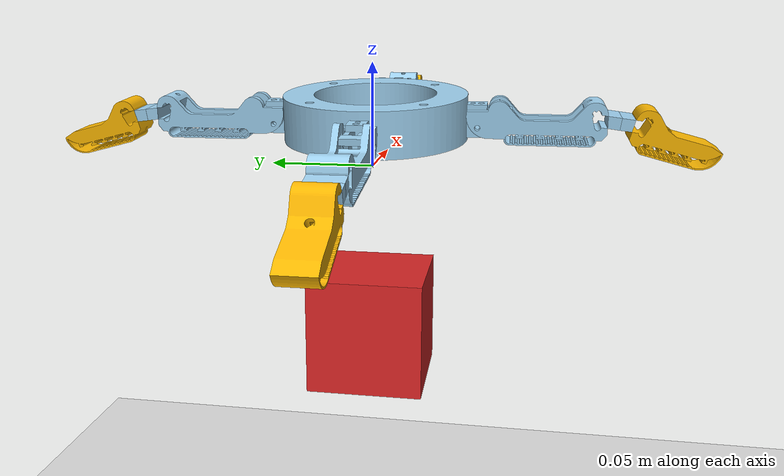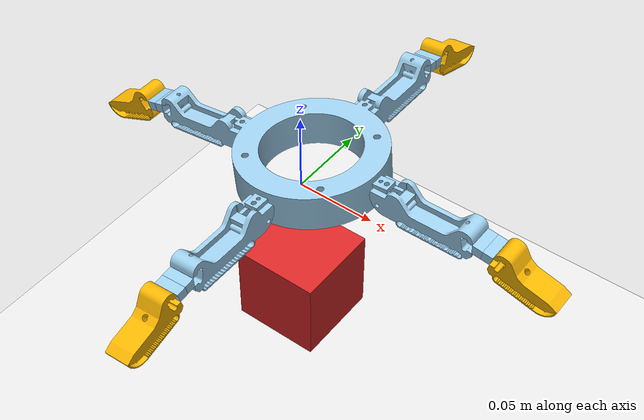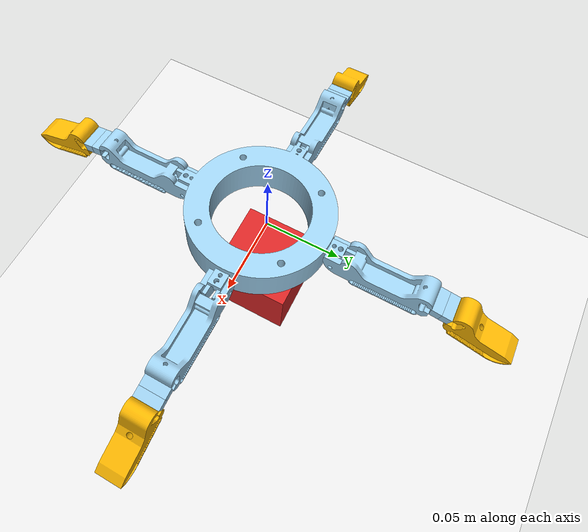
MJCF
<mujoco model="robot_box_scene">
    <include file="robot.xml"/>
    <include file="reorientation_cube.xml"/>

    <statistic center="0 0 0.03" extent="0.4" meansize="0.01"/>

    <visual>
        <headlight diffuse=".8 .8 .8" ambient=".2 .2 .2" specular="1 1 1"/>
        <global azimuth="120" elevation="-20"/>
    </visual>

    <asset>
        <texture type="skybox" builtin="gradient" rgb1="1 1 1" rgb2="1 1 1" width="800" height="800"/>
        <texture type="2d" name="groundplane" builtin="checker" mark="edge" rgb1="1 1 1" rgb2="1 1 1" markrgb="0 0 0"
          width="300" height="300"/>
        <material name="groundplane" texture="groundplane" texuniform="true" texrepeat="5 5" reflectance="0"/>
    </asset>

    <worldbody>
        <site name="world" pos="0 0 0" size="0.001"/>
        <camera name="side" pos="0.4 -0.4 0.2" xyaxes="0.7 0.7 0 -0.2 0.2 0.95"/>
        <camera name="top" pos="0 0 0.35" xyaxes="1 0 0 0 1 0"/>
        <geom name="ground" type="plane" friction="1.5 0.005 0.001" size="5.5 5.5 0.1" rgba=".9 .9 .9 1.0" material="groundplane" pos="0 0 -0.3"/>
    </worldbody>

    <option gravity="0 0 -9.81"/>

    <sensor>
        <framepos name="cube_position" objtype="site" objname="cube_center" reftype="site" refname="world"/>
        <framequat name="cube_orientation" objtype="xbody" objname="cube" reftype="site" refname="world"/>
        <framelinvel name="cube_linvel" objtype="xbody" objname="cube" reftype="site" refname="world"/>
        <frameangvel name="cube_angvel" objtype="xbody" objname="cube" reftype="site" refname="world"/>
        <gyro name="cube_self_rotation" site="cube_center"/>

        <framepos name="tip1_position" objtype="site" objname="tip" reftype="site" refname="world"/>
        <framepos name="tip2_position" objtype="site" objname="tip_2" reftype="site" refname="world"/>
        <framepos name="tip3_position" objtype="site" objname="tip_3" reftype="site" refname="world"/>
        <framepos name="tip4_position" objtype="site" objname="tip_4" reftype="site" refname="world"/>
    </sensor>

    <keyframe>
        <key name="home"
          qpos="
            0.1 0.05 0.05 0.05
            0.1 0.05 0.05 0.05
            0.1 0.05 0.05 0.05
            0.1 0.05 0.05 0.05
            0 0
          "
          ctrl="0.3 0.3 0.3 0.3"
        />
    </keyframe>
</mujoco>

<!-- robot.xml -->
<!-- Generated using onshape-to-robot -->
<!-- Onshape https://cad.onshape.com/documents/8e3b798062dc68d62ddd1283/w/f24c7ae362d29fd08e04f814/e/846a14a309426dccc22e67ba -->
<mujoco model="C:\Users\jeonj\Desktop\rl\left-rl-with-mujoco\my-robot">
  <compiler angle="radian" meshdir="assets" autolimits="true"/>
  <default>
    <default class="C:\Users\jeonj\Desktop\rl\left-rl-with-mujoco\my-robot">
      <joint frictionloss="0.1" armature="0.005"/>
      <position kp="50" dampratio="1"/>
      <default class="visual">
        <geom type="mesh" contype="0" conaffinity="0" group="2"/>
      </default>
      <default class="collision">
        <geom group="3"/>
      </default>
    </default>
  </default>
  <!-- Additional tendons.xml -->
  <tendon>
    <fixed name="right_finger_tendon">
      <joint joint="right-body-link1" coef="1.0"/>
      <joint joint="right-link1-joint" coef="1.0"/>
      <joint joint="right-joint-joint" coef="1.0"/>
      <joint joint="right-joint-link2" coef="1.0"/>
    </fixed>
    <fixed name="front_finger_tendon">
      <joint joint="front-body-link1" coef="1.0"/>
      <joint joint="front-link1-joint" coef="1.0"/>
      <joint joint="front-joint-joint" coef="1.0"/>
      <joint joint="front-joint-link2" coef="1.0"/>
    </fixed>
    <fixed name="left_finger_tendon">
      <joint joint="left-body-link1" coef="1.0"/>
      <joint joint="left-link1-joint" coef="1.0"/>
      <joint joint="left-joint-joint" coef="1.0"/>
      <joint joint="left-joint-link2" coef="1.0"/>
    </fixed>
    <fixed name="back_finger_tendon">
      <joint joint="back-body-link1" coef="1.0"/>
      <joint joint="back-link1-joint" coef="1.0"/>
      <joint joint="back-joint-joint" coef="1.0"/>
      <joint joint="back-joint-link2" coef="1.0"/>
    </fixed>
  </tendon>
  <actuator>
    <motor name="right_finger_motor" tendon="right_finger_tendon" gear="1" ctrlrange="-1 1"/>
    <motor name="front_finger_motor" tendon="front_finger_tendon" gear="1" ctrlrange="-1 1"/>
    <motor name="left_finger_motor" tendon="left_finger_tendon" gear="1" ctrlrange="-1 1"/>
    <motor name="back_finger_motor" tendon="back_finger_tendon" gear="1" ctrlrange="-1 1"/>
  </actuator>
    <contact>
    <exclude body1="1_moter_based" body2="part_1"/>
    <exclude body1="part_1" body2="part_1_2"/>
    <exclude body1="part_1_2" body2="part_1_3"/>
    <exclude body1="part_1_3" body2="part_1_4"/>
    <exclude body1="1_moter_based" body2="part_1_5"/>
    <exclude body1="part_1_5" body2="part_1_6"/>
    <exclude body1="part_1_6" body2="part_1_7"/>
    <exclude body1="part_1_7" body2="part_1_8"/>
    <exclude body1="1_moter_based" body2="part_1_9"/>
    <exclude body1="part_1_9" body2="part_1_10"/>
    <exclude body1="part_1_10" body2="part_1_11"/>
    <exclude body1="part_1_11" body2="part_1_12"/>
    <exclude body1="1_moter_based" body2="part_1_13"/>
    <exclude body1="part_1_13" body2="part_1_14"/>
    <exclude body1="part_1_14" body2="part_1_15"/>
    <exclude body1="part_1_15" body2="part_1_16"/>
  </contact>
<worldbody>
    <!-- Link 1_moter_based -->
    <body name="1_moter_based" pos="0 0 0" quat="1 0 0 0" childclass="C:\Users\jeonj\Desktop\rl\left-rl-with-mujoco\my-robot">
      <inertial pos="0.00865248 -0.000211101 0.0236533" mass="0.0988574" fullinertia="7.99671e-05 7.93898e-05 0.000150461 -1.4e-11 -6.3688e-06 1.55e-10"/>
      <!-- Part 1_moter_based -->
      <geom type="mesh" class="visual" pos="0.0076775 -0.000211712 0.0345291" quat="0.0446761 -0 0.999002 0" mesh="1_moter_based" material="1_moter_based_material"/>
      <geom type="box" class="collision" pos="0.00865939 -0.000211712 0.023573" quat="0.0446761 -0 0.999002 0" size="0.0602996 0.0602996 0.011"/>
      <!-- Link part_1 -->
      <body name="part_1" pos="0.0587722 -0.000211712 0.0245501" quat="0.707106 -0.707106 -0.00074791 -0.00074791">
        <!-- Joint from 1_moter_based to part_1 -->
        <joint axis="0 0 1" name="right-body-link1" type="hinge" range="-0.08726646259971707 1.4835298641951795"/>
        <inertial pos="0.0303144 -0.00114407 -2.76e-10" mass="0.00967703" fullinertia="5.09882e-07 3.73089e-06 3.70397e-06 2.49e-09 -0 0"/>
        <!-- Part part_1 -->
        <geom type="mesh" class="visual" pos="-0.00605674 0.0178057 -0.008" quat="0.707107 -0 0 -0.707107" mesh="part_1" material="part_1_material"/>
        <geom type="box" class="collision" pos="0.0273631 -0.00252505 0" quat="0.707107 -0 0 -0.707107" size="0.010475 0.0326633 0.008"/>
        <!-- Link part_1_2 -->
        <body name="part_1_2" pos="0.0600264 -0.00109104 0" quat="1 0 -0 0">
          <!-- Joint from part_1 to part_1_2 -->
          <joint axis="0 0 1" name="right-link1-joint" type="hinge" range="0.0 0.17453292519943295"/>
          <inertial pos="0 0 0" mass="1e-09" fullinertia="1e-09 1e-09 1e-09 0 0 0"/>
          <!-- Part part_1_2 -->
          <geom type="mesh" class="visual" pos="-0.066152 0.0188877 -0.008" quat="0.707107 -0 -0 -0.707107" mesh="part_1__2" material="part_1__2_material"/>
          <geom type="box" class="collision" pos="0.00312812 -0.00254674 0" quat="0.707107 -0 -0 -0.707107" size="0.00327122 0.00312809 0.008"/>
          <!-- Link part_1_3 -->
          <body name="part_1_3" pos="0.00550329 0.000724522 0" quat="1 0 0 -0">
            <!-- Joint from part_1_2 to part_1_3 -->
            <joint axis="0 0 1" name="right-joint-joint" type="hinge" range="0.0 0.17453292519943295"/>
            <inertial pos="0 0 0" mass="1e-09" fullinertia="1e-09 1e-09 1e-09 0 0 0"/>
            <!-- Part part_1_3 -->
            <geom type="mesh" class="visual" pos="-0.0716553 0.0181632 -0.008" quat="0.707107 0 0 -0.707107" mesh="part_1__3" material="part_1__3_material"/>
            <geom type="box" class="collision" pos="0.00348026 -0.00249631 0" quat="0.707107 0 0 -0.707107" size="0.00322251 0.00348024 0.008"/>
            <!-- Link part_1_4 -->
            <body name="part_1_4" pos="0.00551629 0.000726234 0" quat="1 0 0 -0">
              <!-- Joint from part_1_3 to part_1_4 -->
              <joint axis="0 0 1" name="right-joint-link2" type="hinge" range="0.0 0.17453292519943295"/>
              <inertial pos="0.0177914 0.00463425 -2.4933e-08" mass="0.00789483" fullinertia="4.5574e-07 1.04275e-06 1.16314e-06 -3.06836e-07 2e-12 1e-12"/>
              <!-- Part part_1_4 -->
              <geom type="mesh" class="visual" pos="-0.0771851 0.0174352 -0.008" quat="0.707107 -0 0 -0.707107" mesh="part_1__4" material="part_1__4_material"/>
              <geom type="box" class="collision" pos="0.0200098 0.00346335 0" quat="0.707107 -0 0 -0.707107" size="0.0137562 0.0209902 0.008"/>
                          <site name="tip" type="sphere" size="0.004" pos="0.0408 0.0034 0" rgba="1 0 0 0.5" group="4"/>
            </body>
          </body>
        </body>
      </body>
      <!-- Link part_1_5 -->
      <body name="part_1_5" pos="0.00897181 -0.0502117 0.020087" quat="0.521839 -0.477163 0.477163 -0.521839">
        <!-- Joint from 1_moter_based to part_1_5 -->
        <joint axis="0 0 1" name="front-body-link1" type="hinge" range="-8.881784197001252e-16 1.5707963267948957"/>
        <inertial pos="0.0303144 -0.00114407 -2.76e-10" mass="0.00967703" fullinertia="5.09882e-07 3.73089e-06 3.70397e-06 2.49e-09 -0 0"/>
        <!-- Part part_1_5 -->
        <geom type="mesh" class="visual" pos="-0.00605674 0.0178057 -0.008" quat="0.707107 0 0 -0.707107" mesh="part_1" material="part_1_material"/>
        <geom type="box" class="collision" pos="0.0273631 -0.00252505 0" quat="0.707107 0 0 -0.707107" size="0.010475 0.0326633 0.008"/>
        <!-- Link part_1_6 -->
        <body name="part_1_6" pos="0.0600264 -0.00109104 0" quat="1 0 0 -0">
          <!-- Joint from part_1_5 to part_1_6 -->
          <joint axis="0 0 1" name="front-link1-joint" type="hinge" range="0.0 0.17453292519943295"/>
          <inertial pos="0 0 0" mass="1e-09" fullinertia="1e-09 1e-09 1e-09 0 0 0"/>
          <!-- Part part_1_6 -->
          <geom type="mesh" class="visual" pos="-0.066152 0.0188877 -0.008" quat="0.707107 0 0 -0.707107" mesh="part_1__2" material="part_1__2_material"/>
          <geom type="box" class="collision" pos="0.00312812 -0.00254674 0" quat="0.707107 0 0 -0.707107" size="0.00327122 0.00312809 0.008"/>
          <!-- Link part_1_7 -->
          <body name="part_1_7" pos="0.00550329 0.000724522 -0" quat="1 0 0 -0">
            <!-- Joint from part_1_6 to part_1_7 -->
            <joint axis="0 0 1" name="front-joint-joint" type="hinge" range="0.0 0.17453292519943295"/>
            <inertial pos="0 0 0" mass="1e-09" fullinertia="1e-09 1e-09 1e-09 0 0 0"/>
            <!-- Part part_1_7 -->
            <geom type="mesh" class="visual" pos="-0.0716553 0.0181632 -0.008" quat="0.707107 0 0 -0.707107" mesh="part_1__3" material="part_1__3_material"/>
            <geom type="box" class="collision" pos="0.00348026 -0.00249631 0" quat="0.707107 0 0 -0.707107" size="0.00322251 0.00348024 0.008"/>
            <!-- Link part_1_8 -->
            <body name="part_1_8" pos="0.00551629 0.000726234 -0" quat="1 0 -0 0">
              <!-- Joint from part_1_7 to part_1_8 -->
              <joint axis="0 0 1" name="front-joint-link2" type="hinge" range="0.0 0.17453292519943295"/>
              <inertial pos="0.0177914 0.00463425 -2.4933e-08" mass="0.00789483" fullinertia="4.5574e-07 1.04275e-06 1.16314e-06 -3.06836e-07 2e-12 1e-12"/>
              <!-- Part part_1_8 -->
              <geom type="mesh" class="visual" pos="-0.0771851 0.0174352 -0.008" quat="0.707107 0 0 -0.707107" mesh="part_1__4" material="part_1__4_material"/>
              <geom type="box" class="collision" pos="0.0200098 0.00346335 0" quat="0.707107 0 0 -0.707107" size="0.0137562 0.0209902 0.008"/>
                          <site name="tip_2" type="sphere" size="0.004" pos="0.0408 0.0034 0" rgba="1 0 0 0.5" group="4"/>
            </body>
          </body>
        </body>
      </body>
      <!-- Link part_1_9 -->
      <body name="part_1_9" pos="-0.0408286 -0.000211712 0.0156238" quat="0.047167 0.047167 0.705532 -0.705532">
        <!-- Joint from 1_moter_based to part_1_9 -->
        <joint axis="0 0 1" name="left-body-link1" type="hinge" range="-0.04412582000000008 1.5266705067948965"/>
        <inertial pos="0.0303144 -0.00114407 -2.76e-10" mass="0.00967703" fullinertia="5.09882e-07 3.73089e-06 3.70397e-06 2.49e-09 -0 0"/>
        <!-- Part part_1_9 -->
        <geom type="mesh" class="visual" pos="-0.00605674 0.0178057 -0.008" quat="0.707107 0 0 -0.707107" mesh="part_1" material="part_1_material"/>
        <geom type="box" class="collision" pos="0.0273631 -0.00252505 0" quat="0.707107 0 0 -0.707107" size="0.010475 0.0326633 0.008"/>
        <!-- Link part_1_10 -->
        <body name="part_1_10" pos="0.0600264 -0.00109104 0" quat="1 0 -0 0">
          <!-- Joint from part_1_9 to part_1_10 -->
          <joint axis="0 0 1" name="left-link1-joint" type="hinge" range="0.0 0.17453292519943295"/>
          <inertial pos="0 0 0" mass="1e-09" fullinertia="1e-09 1e-09 1e-09 0 0 0"/>
          <!-- Part part_1_10 -->
          <geom type="mesh" class="visual" pos="-0.066152 0.0188877 -0.008" quat="0.707107 0 0 -0.707107" mesh="part_1__2" material="part_1__2_material"/>
          <geom type="box" class="collision" pos="0.00312812 -0.00254674 0" quat="0.707107 0 0 -0.707107" size="0.00327122 0.00312809 0.008"/>
          <!-- Link part_1_11 -->
          <body name="part_1_11" pos="0.00550329 0.000724522 0" quat="1 0 0 0">
            <!-- Joint from part_1_10 to part_1_11 -->
            <joint axis="0 0 1" name="left-joint-joint" type="hinge" range="0.0 0.17453292519943295"/>
            <inertial pos="0 0 0" mass="1e-09" fullinertia="1e-09 1e-09 1e-09 0 0 0"/>
            <!-- Part part_1_11 -->
            <geom type="mesh" class="visual" pos="-0.0716553 0.0181632 -0.008" quat="0.707107 0 -0 -0.707107" mesh="part_1__3" material="part_1__3_material"/>
            <geom type="box" class="collision" pos="0.00348026 -0.00249631 0" quat="0.707107 0 -0 -0.707107" size="0.00322251 0.00348024 0.008"/>
            <!-- Link part_1_12 -->
            <body name="part_1_12" pos="0.00551629 0.000726234 -0" quat="1 -0 0 0">
              <!-- Joint from part_1_11 to part_1_12 -->
              <joint axis="0 0 1" name="left-joint-link2" type="hinge" range="0.0 0.17453292519943295"/>
              <inertial pos="0.0177914 0.00463425 -2.4933e-08" mass="0.00789483" fullinertia="4.5574e-07 1.04275e-06 1.16314e-06 -3.06836e-07 2e-12 1e-12"/>
              <!-- Part part_1_12 -->
              <geom type="mesh" class="visual" pos="-0.0771851 0.0174352 -0.008" quat="0.707107 0 0 -0.707107" mesh="part_1__4" material="part_1__4_material"/>
              <geom type="box" class="collision" pos="0.0200098 0.00346335 0" quat="0.707107 0 0 -0.707107" size="0.0137562 0.0209902 0.008"/>
                          <site name="tip_3" type="sphere" size="0.004" pos="0.0408 0.0034 0" rgba="1 0 0 0.5" group="4"/>
            </body>
          </body>
        </body>
      </body>
      <!-- Link part_1_13 -->
      <body name="part_1_13" pos="0.00897181 0.0497883 0.020087" quat="0.477163 -0.521839 -0.521839 0.477163">
        <!-- Joint from 1_moter_based to part_1_13 -->
        <joint axis="0 0 1" name="back-body-link1" type="hinge" range="0.0 1.5707963267948966"/>
        <inertial pos="0.0303144 -0.00114407 -2.76e-10" mass="0.00967703" fullinertia="5.09882e-07 3.73089e-06 3.70397e-06 2.49e-09 -0 0"/>
        <!-- Part part_1_13 -->
        <geom type="mesh" class="visual" pos="-0.00605674 0.0178057 -0.008" quat="0.707107 -0 0 -0.707107" mesh="part_1" material="part_1_material"/>
        <geom type="box" class="collision" pos="0.0273631 -0.00252505 0" quat="0.707107 -0 0 -0.707107" size="0.010475 0.0326633 0.008"/>
        <!-- Link part_1_14 -->
        <body name="part_1_14" pos="0.0600264 -0.00109104 0" quat="1 0 0 0">
          <!-- Joint from part_1_13 to part_1_14 -->
          <joint axis="0 0 1" name="back-link1-joint" type="hinge" range="0.0 0.17453292519943295"/>
          <inertial pos="0 0 0" mass="1e-09" fullinertia="1e-09 1e-09 1e-09 0 0 0"/>
          <!-- Part part_1_14 -->
          <geom type="mesh" class="visual" pos="-0.066152 0.0188877 -0.008" quat="0.707107 0 0 -0.707107" mesh="part_1__2" material="part_1__2_material"/>
          <geom type="box" class="collision" pos="0.00312812 -0.00254674 0" quat="0.707107 0 0 -0.707107" size="0.00327122 0.00312809 0.008"/>
          <!-- Link part_1_15 -->
          <body name="part_1_15" pos="0.00550329 0.000724522 0" quat="1 -0 0 0">
            <!-- Joint from part_1_14 to part_1_15 -->
            <joint axis="0 0 1" name="back-joint-joint" type="hinge" range="0.0 0.17453292519943295"/>
            <inertial pos="0 0 0" mass="1e-09" fullinertia="1e-09 1e-09 1e-09 0 0 0"/>
            <!-- Part part_1_15 -->
            <geom type="mesh" class="visual" pos="-0.0716553 0.0181632 -0.008" quat="0.707107 0 0 -0.707107" mesh="part_1__3" material="part_1__3_material"/>
            <geom type="box" class="collision" pos="0.00348026 -0.00249631 0" quat="0.707107 0 0 -0.707107" size="0.00322251 0.00348024 0.008"/>
            <!-- Link part_1_16 -->
            <body name="part_1_16" pos="0.00551629 0.000726234 0" quat="1 -0 -0 -0">
              <!-- Joint from part_1_15 to part_1_16 -->
              <joint axis="0 0 1" name="back-joint-link2" type="hinge" range="0.0 0.17453292519943295"/>
              <inertial pos="0.0177914 0.00463425 -2.4933e-08" mass="0.00789483" fullinertia="4.5574e-07 1.04275e-06 1.16314e-06 -3.06836e-07 2e-12 1e-12"/>
              <!-- Part part_1_16 -->
              <geom type="mesh" class="visual" pos="-0.0771851 0.0174352 -0.008" quat="0.707107 0 0 -0.707107" mesh="part_1__4" material="part_1__4_material"/>
              <geom type="box" class="collision" pos="0.0200098 0.00346335 0" quat="0.707107 0 0 -0.707107" size="0.0137562 0.0209902 0.008"/>
                          <site name="tip_4" type="sphere" size="0.004" pos="0.0408 0.0034 0" rgba="1 0 0 0.5" group="4"/>
            </body>
          </body>
        </body>
      </body>
    </body>
  </worldbody>
  <asset>
    <mesh file="part_1__3.stl"/>
    <mesh file="part_1__2.stl"/>
    <mesh file="1_moter_based.stl"/>
    <mesh file="part_1.stl"/>
    <mesh file="part_1__4.stl"/>
    <material name="1_moter_based_material" rgba="0.615686 0.811765 0.929412 1"/>
    <material name="part_1_material" rgba="0.615686 0.811765 0.929412 1"/>
    <material name="part_1__2_material" rgba="0.615686 0.811765 0.929412 1"/>
    <material name="part_1__3_material" rgba="0.615686 0.811765 0.929412 1"/>
    <material name="part_1__4_material" rgba="0.980392 0.713725 0.00392157 1"/>
  </asset>
  <actuator/>
  <equality/>
</mujoco>

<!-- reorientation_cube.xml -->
<mujoco model="cube_56mm">
  <!-- 56x56x56mm 정육면체 (3x3 스피드큐브 규격)
       x,y 슬라이드 조인트만 있어서 높이(z)와 회전은 고정,
       중력에 의한 낙하 없이 바닥에 놓인 것처럼 위치만 바뀜.
       z=-0.08m: 4손가락이 완전히 오므렸을 때 손끝이 모이는 실측 높이
       (mesh/텍스처 파일 의존성 없음) -->
  <default>
    <default class="cube">
      <geom friction="1.0 0.01 0.001" conaffinity="2" condim="4"/>
    </default>
  </default>

  <worldbody>
    <body name="cube" pos="0 0 -0.08" quat="1 0 0 0" childclass="cube">
      <joint name="cube_slide_x" type="slide" axis="1 0 0" damping="0.5"/>
      <joint name="cube_slide_y" type="slide" axis="0 1 0" damping="0.5"/>
      <geom name="cube" type="box" size="0.028 0.028 0.028" mass="0.07"
            group="2" rgba="0.85 0.15 0.15 1"/>
      <site name="cube_center" pos="0 0 0" group="4" size="0.001"/>
    </body>
  </worldbody>
</mujoco>
